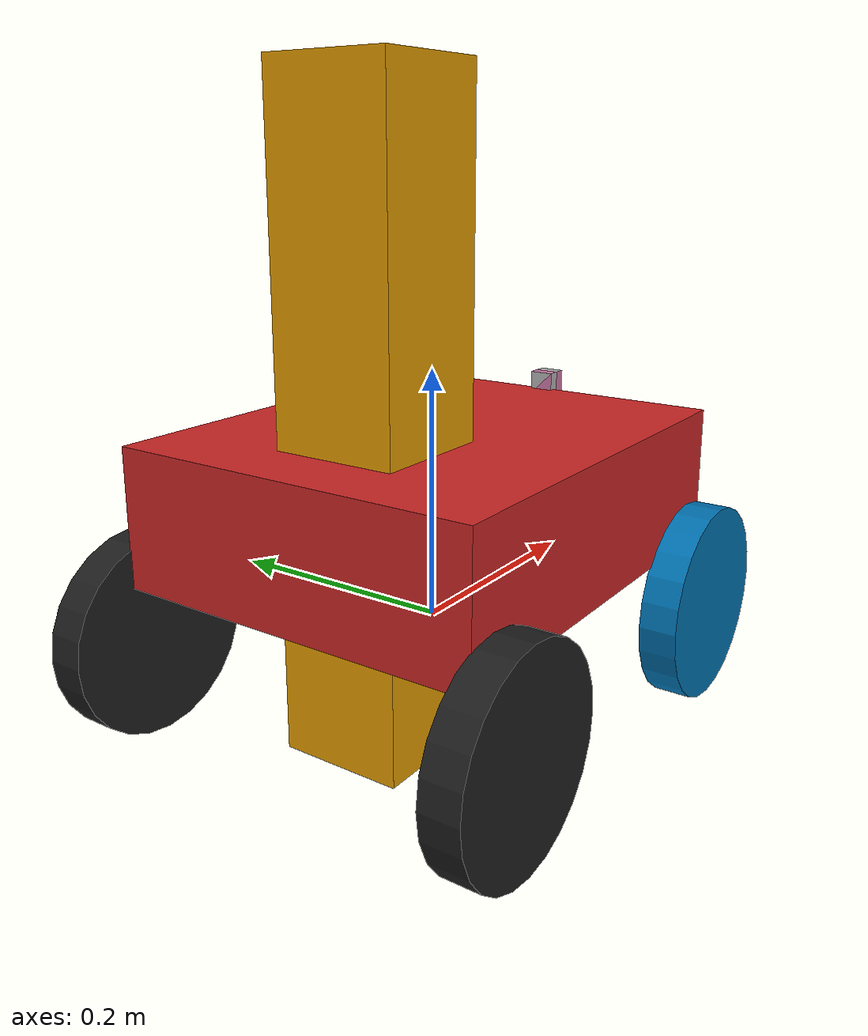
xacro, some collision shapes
<?xml version='1.0'?>

<robot name="udacity_my_robot" xmlns:xacro="http://www.ros.org/wiki/xacro">

  <xacro:include filename="$(find slam_project)/urdf/udacity_bot.gazebo"/>
  <link name="robot_footprint"></link>

  <joint name="robot_footprint_joint" type="fixed">
    <origin xyz="0 0 0" rpy="0 0 0" />
    <parent link="robot_footprint"/>
    <child link="chassis" />
  </joint>

  <link name='chassis'>
    <pose>0 0 0.2 1 0 0</pose>

    <inertial>
      <mass value="10.0"/>
      <origin xyz="0.0 0 0.1" rpy=" 0 0 0"/>
      <inertia
          ixx="0.1" ixy="0" ixz="0"
          iyy="0.1" iyz="0"
          izz="0.1"
      />
    </inertial>

    <collision name='collision'>
      <origin xyz="0 0 0.1" rpy=" 0 0 0"/>
      <geometry>
        <box size=".35 .3 .11"/>
      </geometry>
    </collision>

    <visual name='chassis_visual'>
      <origin xyz="0 0 0.1" rpy=" 0 0 0"/>
      <geometry>
        <box size=".35 .3 .11"/>
      </geometry>
    </visual>

  </link>

  <!-- LEFT BACK WHEEL -->

  <link name='left_back_wheel'>

    <inertial>
      <mass value="2.0"/>
      <origin xyz="0 0 0" rpy=" 0 1.5707 1.5707"/>
      <inertia
          ixx="0.1" ixy="0" ixz="0"
          iyy="0.1" iyz="0"
          izz="0.1"
      />
    </inertial>

    <collision name='left_back_wheel_collision'>
      <origin xyz="0 0 0" rpy=" 0 1.5707 1.5707"/>
      <geometry>
        <cylinder length="0.03" radius="0.08"/>
      </geometry>
    </collision>

    <visual name='left_back_wheel_visual'>
      <origin xyz="0 0 0" rpy=" 0 1.5707 1.5707"/>
      <geometry>
        <cylinder length="0.03" radius="0.08"/>
      </geometry>
    </visual>

  </link>

  <joint type="continuous" name="left_back_wheel_hinge">
    <origin xyz="0.15 0.164 0" rpy="0 0 0"/>
    <child link="left_back_wheel"/>
    <parent link="chassis"/>
    <axis xyz="0 1 0" rpy="0 0 0"/>
    <limit effort="10000" velocity="1000"/>
    <joint_properties damping="1.0" friction="1.0"/>
  </joint>

  <!-- LEFT FRONT WHEEL  -->
  <link name='left_front_wheel'>

    <inertial>
      <mass value="4.0"/>
      <origin xyz="0 0 0" rpy=" 0 1.5707 1.5707"/>
      <inertia
          ixx="0.1" ixy="0" ixz="0"
          iyy="0.1" iyz="0"
          izz="0.1"
      />
    </inertial>

    <collision name='left_front_wheel_collision'>
      <origin xyz="0 0 0" rpy=" 0 1.5707 1.5707"/>
      <geometry>
        <cylinder length="0.03" radius="0.08"/>
      </geometry>
    </collision>

    <visual name='left_front_wheel_visual'>
      <origin xyz="0 0 0" rpy=" 0 1.5707 1.5707"/>
      <geometry>
        <cylinder length="0.03" radius="0.08"/>
      </geometry>
    </visual>

  </link>

  <joint type="continuous" name="left_front_wheel_hinge">
    <origin xyz="-0.15 0.164 0" rpy="0 0 0"/>
    <child link="left_front_wheel"/>
    <parent link="chassis"/>
    <axis xyz="0 1 0" rpy="0 0 0"/>
    <limit effort="10000" velocity="1000"/>
    <joint_properties damping="1.0" friction="2.0"/>
  </joint>

<!-- RIGHT BACK WHEEL -->

  <link name='right_back_wheel'>

    <inertial>
      <mass value="2.0"/>
      <origin xyz="0 0 0" rpy=" 0 1.5707 1.5707"/>
      <inertia
          ixx="0.1" ixy="0" ixz="0"
          iyy="0.1" iyz="0"
          izz="0.1"
      />
    </inertial>

    <collision name='right_back_wheel_collision'>
      <origin xyz="0 0 0" rpy=" 0 1.5707 1.5707"/>
      <geometry>
        <cylinder length="0.03" radius="0.08"/>
      </geometry>
    </collision>

    <visual name='right_back_wheel_visual'>
      <origin xyz="0 0 0" rpy=" 0 1.5707 1.5707"/>
      <geometry>
        <cylinder length="0.03" radius="0.08"/>
      </geometry>
    </visual>
  </link>

  <joint type="continuous" name="right_back_wheel_hinge">
    <origin xyz="0.15 -0.164 0" rpy="0 0 0"/>
    <child link="right_back_wheel"/>
    <parent link="chassis"/>
    <axis xyz="0 1 0" rpy="0 0 0"/>
    <limit effort="10000" velocity="1000"/>
    <joint_properties damping="1.0" friction="1.0"/>
  </joint>

  <!-- RIGHT FRONT WHEEL -->
  <link name='right_front_wheel'>

    <inertial>
      <mass value="4.0"/>
      <origin xyz="0 0 0" rpy=" 0 1.5707 1.5707"/>
      <inertia
          ixx="0.1" ixy="0" ixz="0"
          iyy="0.1" iyz="0"
          izz="0.1"
      />
    </inertial>

    <collision name='right_front_wheel_collision'>
      <origin xyz="0 0 0" rpy=" 0 1.5707 1.5707"/>
      <geometry>
        <cylinder length="0.03" radius="0.08"/>
      </geometry>
    </collision>

    <visual name='right_front_wheel_visual'>
      <origin xyz="0 0 0" rpy=" 0 1.5707 1.5707"/>
      <geometry>
        <cylinder length="0.03" radius="0.08"/>
      </geometry>
    </visual>

  </link>

  <joint type="continuous" name="right_front_wheel_hinge">
    <origin xyz="-0.15 -0.164 0" rpy="0 0 0"/>
    <child link="right_front_wheel"/>
    <parent link="chassis"/>
    <axis xyz="0 1 0" rpy="0 0 0"/>
    <limit effort="10000" velocity="1000"/>
    <joint_properties damping="1.0" friction="2.0"/>
  </joint>

  <!-- CAMERA -->

  <link name="camera">
    <inertial>
      <mass value="0.1"/>
      <origin xyz="0 0 0" rpy=" 0 0 0"/>
      <inertia
          ixx="1e-6" ixy="0" ixz="0"
          iyy="1e-6" iyz="0"
          izz="1e-6"
      />
    </inertial>

    <collision name='camera_collision'>
      <origin xyz="0 0 0" rpy=" 0 0 0"/>
      <geometry>
        <box size="0.05 0.05 0.05"/>
      </geometry>
    </collision>

    <visual name='camera_visual'>
      <origin xyz="0 0 0" rpy=" 0 0 0"/>
      <geometry>
        <box size="0.02 0.02 0.02"/>
      </geometry>
    </visual>

  </link>

  <joint type="fixed" name="camera_joint">
    <origin xyz="0.18 0 0.16" rpy="0 0 0"/>
    <child link="camera"/>
    <parent link="chassis"/>
    <axis xyz="0 0 0" rpy="0 0 0"/>
    <limit effort="10000" velocity="1000"/>
    <joint_properties damping="1.0" friction="1.0"/>
  </joint>

  <link name="camera_optical">
    <inertial>
      <mass value="0.1"/>
      <origin xyz="0 0 0" rpy=" 0 0 0"/>
      <inertia
          ixx="1e-6" ixy="0" ixz="0"
          iyy="1e-6" iyz="0"
          izz="1e-6"
      />
    </inertial>

    <collision name='camera_collision'>
      <origin xyz="0 0 0" rpy=" 0 0 0"/>
      <geometry>
        <box size="0.05 0.05 0.05"/>
      </geometry>
    </collision>

    <visual name='camera_visual'>
      <origin xyz="0 0 0" rpy="0 0 0"/>
      <geometry>
        <box size="0.02 0.02 0.02"/>
      </geometry>
    </visual>

  </link>

  <joint type="fixed" name="camera_optical_joint">
    <origin xyz="0.18 0 0.16" rpy="-1.57 0 -1.57"/>
    <child link="camera_optical"/>
    <parent link="chassis"/>
    <axis xyz="0 0 0" rpy="0 0 0"/>
    <limit effort="10000" velocity="1000"/>
    <joint_properties damping="1.0" friction="1.0"/>
  </joint>

  <!-- LASER RANGE FINDER-->

  <link name="hokuyo">
    <inertial>
      <mass value="0.1"/>
      <origin xyz="0 0 0" rpy=" 0 0 0"/>
      <inertia
          ixx="1e-6" ixy="0" ixz="0"
          iyy="1e-6" iyz="0"
          izz="1e-6"
      />
    </inertial>

    <collision name='hokuyo_collision'>
      <origin xyz="0 0 0" rpy=" 0 0 0"/>
      <geometry>
        <box size="0.1 0.1 0.5"/>
      </geometry>
    </collision>

    <visual name='hokuyo_visual'>
      <geometry>
          <mesh filename="package://slam_project/meshes/hokuyo.dae"/>
      </geometry>
    </visual>

  </link>

  <joint type="fixed" name="hokuyo_joint">
    <origin xyz="-0.07 0 0.17" rpy="0 0 0"/>
    <child link="hokuyo"/>
    <parent link="chassis"/>
    <axis xyz="0 0 0" rpy="0 0 0"/>
    <limit effort="10000" velocity="1000"/>
    <joint_properties damping="1.0" friction="1.0"/>
  </joint>

</robot>
